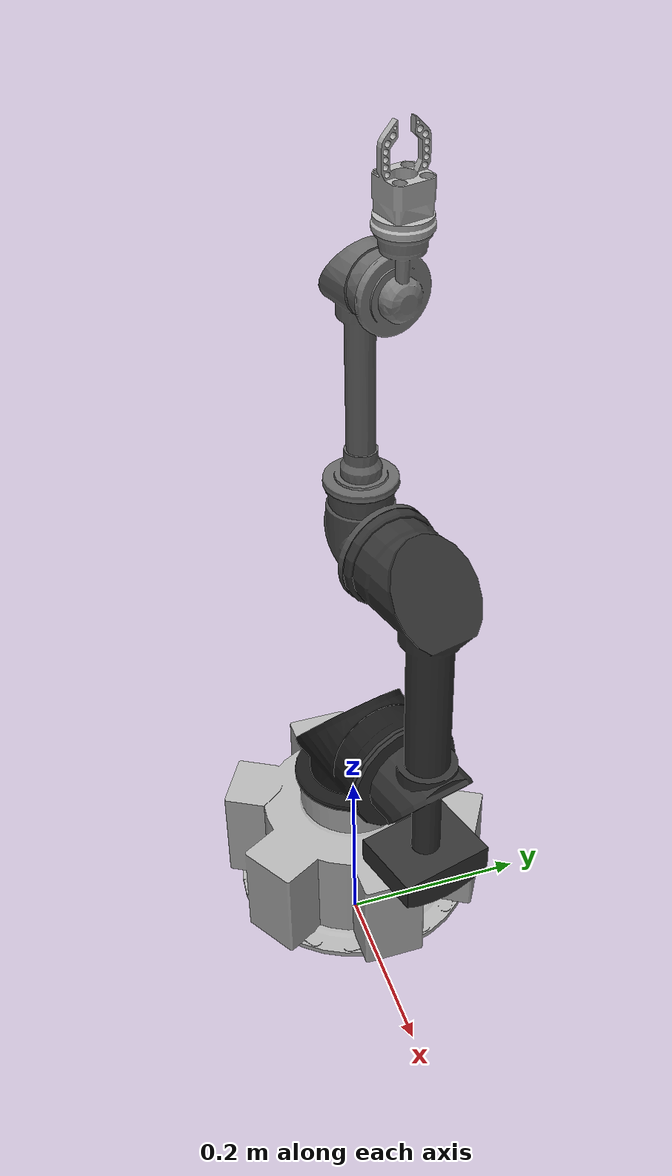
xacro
<?xml version="1.0"?>
<robot xmlns:xacro="http://ros.org/wiki/xacro"
	name="servo" >

	<!-- common stuff -->
	<xacro:include filename="$(find servo_description)/urdf/common.gazebo.xacro" />

	<!-- servo -->
	<xacro:include filename="$(find servo_description)/urdf/servo.urdf.xacro" />
	<!--xacro:include filename="$(find servo_description)/urdf/wall_world.urdf.xacro" /-->

	<!-- arm -->
	<xacro:servo_robot prefix="" joint_limited="false"/>

	<link name="world" />

	<joint name="world_joint" type="fixed">
		<parent link="world" />
		<child link = "base_link" />
		<origin xyz="0 -0 0.065" rpy="0.0 0.0 0.0" />
	</joint>
</robot>

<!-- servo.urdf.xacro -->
<robot xmlns:xacro="http://ros.org/wiki/xacro">
    <xacro:include filename="$(find servo_description)/urdf/servo.transmission.xacro" />
    <xacro:include filename="$(find servo_description)/urdf/servo.gazebo.xacro" />

    <!-- Inertia parameters -->
    <xacro:property name="base_mass" value="4.0" />  <!-- This mass might be incorrect -->
    <xacro:property name="a1_mass" value="3.7000" />
    <xacro:property name="a2_mass" value="8.3930" />
    <xacro:property name="a3_mass" value="2.2750" />
    <xacro:property name="a4_mass" value="1.2190" />
    <xacro:property name="a5_mass" value="1.2190" />
    <xacro:property name="a6_mass" value="0.1879" />

    <!-- Kinematic model -->
    <!-- Properties from urcontrol.conf -->

    <xacro:property name="servo_d1" value="0.089159" />
    <xacro:property name="servo_a2" value="-0.42500" />
    <xacro:property name="servo_a3" value="-0.39225" />
    <xacro:property name="servo_d4" value="0.10915" />
    <xacro:property name="servo_d5" value="0.09465" />
    <xacro:property name="servo_d6" value="0.0823" />

    <!-- Arbitrary offsets for shoulder/elbow joints -->
    <xacro:property name="shoulder_offset" value="0.13585" />  <!-- measured from model -->
    <xacro:property name="elbow_offset" value="-0.1197" /> <!-- measured from model -->

    <!-- link lengths used in model -->
    <xacro:property name="a1_height" value="${servo_d1}" />
    <xacro:property name="a2_length" value="${-servo_a2}" />
    <xacro:property name="a3_length" value="${-servo_a3}" />
    <xacro:property name="a4_length" value="${servo_d4}" />
    <xacro:property name="a5_length" value="${servo_d5}" />
    <xacro:property name="a6_length" value="${servo_d6}" />

    <!--property name="shoulder_height" value="0.089159" /-->
    <!--property name="shoulder_offset" value="0.13585" /-->  <!-- shoulder_offset - elbow_offset + wrist_1_length = 0.10915 -->
    <!--property name="upper_arm_length" value="0.42500" /-->
    <!--property name="elbow_offset" value="0.1197" /-->       <!-- CAD measured -->
    <!--property name="forearm_length" value="0.39225" /-->
    <!--property name="wrist_1_length" value="0.093" /-->     <!-- CAD measured -->
    <!--property name="wrist_2_length" value="0.09465" /-->   <!-- In CAD this distance is 0.930, but in the spec it is 0.09465 -->
    <!--property name="wrist_3_length" value="0.0823" /-->

    <xacro:property name="shoulder_radius" value="0.060" />   <!-- manually measured -->
    <xacro:property name="upper_arm_radius" value="0.054" />  <!-- manually measured -->
    <xacro:property name="elbow_radius" value="0.060" />      <!-- manually measured -->
    <xacro:property name="forearm_radius" value="0.040" />    <!-- manually measured -->
    <xacro:property name="wrist_radius" value="0.045" />      <!-- manually measured -->

    <xacro:macro name="cylinder_inertial" params="radius length mass *origin">
        <inertial>
            <mass value="${mass}" />
            <xacro:insert_block name="origin" />
            <inertia
                ixx="${0.0833333 * mass * (3 * radius * radius + length * length)}" ixy="0.0" ixz="0.0"
                iyy="${0.0833333 * mass * (3 * radius * radius + length * length)}" iyz="0.0"
                izz="${0.5 * mass * radius * radius}"
            />
        </inertial>
    </xacro:macro>

    <xacro:macro name="null_inertial" params="radius length mass *origin">
        <inertial>
            <mass value="${mass}" />
            <xacro:insert_block name="origin" />
            <inertia
                ixx="0" ixy="0" ixz="0"
                iyy="0" iyz="0"
                izz="0"
            />
        </inertial>
    </xacro:macro>

    <xacro:macro name="servo_robot" params="prefix joint_limited
        a1_lower_limit:=${-pi}    a1_upper_limit:=${pi}
        a2_lower_limit:=${-pi}    a2_upper_limit:=${pi}
        a3_lower_limit:=${-pi}    a3_upper_limit:=${pi}
        a4_lower_limit:=${-pi}    a4_upper_limit:=${pi}
        a5_lower_limit:=${-pi}    a5_upper_limit:=${pi}
        a6_lower_limit:=${-pi}    a6_upper_limit:=${pi}">

        <link name="${prefix}base_link" >
            <visual>
                <geometry>
                    <mesh filename="package://servo_description/meshes/base_link.stl" />
                </geometry>
                <material name="Black">
                    <color rgba="0.7 0.7 0.7 1.0"/>
                </material>
            </visual>
            <collision>
                <geometry>
                    <mesh filename="package://servo_description/meshes/base_link.stl" />
                </geometry>
            </collision>
            <xacro:null_inertial radius="0.06" length="0.05" mass="${base_mass}">
                <origin xyz="0.0 0.0 0.0" rpy="0 0 0" />
            </xacro:null_inertial>
        </link>

        <joint name="${prefix}a1_joint" type="revolute">
            <parent link="${prefix}base_link" />
            <child link = "${prefix}a1_link" />
            <origin xyz="0 0 0" rpy="-0.18123 -1.5708 0.18123" />
            <axis xyz="1 0 0" />
            <xacro:unless value="${joint_limited}">
                <limit lower="${-2.0 * pi}" upper="${2.0 * pi}" effort="150.0" velocity="3.15"/>
            </xacro:unless>
            <xacro:if value="${joint_limited}">
                <limit lower="${a1_lower_limit}" upper="${a1_upper_limit}" effort="150.0" velocity="3.15"/>
            </xacro:if>
            <dynamics damping="0.0" friction="0.0"/>
        </joint>

        <link name="${prefix}a1_link">
            <visual>
                <geometry>
                    <mesh filename="package://servo_description/meshes/a1.stl" />
                </geometry>
                <material name="LightGrey">
                    <color rgba="0.1 0.1 0.1 1.0"/>
                </material>
            </visual>
            <collision>
                <geometry>
                    <mesh filename="package://servo_description/meshes/a1.stl" />
                </geometry>
            </collision>
            <xacro:null_inertial radius="0.06" length="0.15" mass="${a1_mass}">
                <origin xyz="0.0 0.0 0.0" rpy="0 0 0" />
            </xacro:null_inertial>
        </link>

        <joint name="${prefix}a2_joint" type="revolute">
            <parent link="${prefix}a1_link" />
            <child link = "${prefix}a2_link" />
            <origin xyz="0.23 0.023553 -0.087899" rpy="0 1.5708 0" />
            <axis xyz="0.96593 0.25882 0" />
            <xacro:unless value="${joint_limited}">
                <limit lower="${-2.0 * pi}" upper="${2.0 * pi}" effort="150.0" velocity="3.15"/>
            </xacro:unless>
            <xacro:if value="${joint_limited}">
                <limit lower="${a2_lower_limit}" upper="${a2_upper_limit}" effort="150.0" velocity="3.15"/>
            </xacro:if>
            <dynamics damping="0.0" friction="0.0"/>
        </joint>

        <link name="${prefix}a2_link">
            <visual>
                <geometry>
                    <mesh filename="package://servo_description/meshes/a2.stl" />
                </geometry>
                <material name="Black">
                    <color rgba="0.2 0.2 0.2 1.0"/>
                </material>
            </visual>
            <collision>
                <geometry>
                    <mesh filename="package://servo_description/meshes/a2.stl" />
                </geometry>
            </collision>
            <xacro:null_inertial radius="0.06" length="0.56" mass="${a2_mass}">
                <origin xyz="0.0 0.0 0.28" rpy="0 0 0" />
            </xacro:null_inertial>
        </link>

        <joint name="${prefix}a3_joint" type="revolute">
            <parent link="${prefix}a2_link" />
            <child link = "${prefix}a3_link" />
            <origin xyz="-0.027529 -0.0073763 0.25899" rpy="0 0 0" />
            <axis xyz="0.96593 0.25882 0" />
            <xacro:unless value="${joint_limited}">
                <limit lower="${-pi}" upper="${pi}" effort="150.0" velocity="3.15"/>
            </xacro:unless>
            <xacro:if value="${joint_limited}">
                <limit lower="${a3_lower_limit}" upper="${a3_upper_limit}" effort="150.0" velocity="3.15"/>
            </xacro:if>
            <dynamics damping="0.0" friction="0.0"/>
        </joint>

        <link name="${prefix}a3_link">
            <visual>
                <geometry>
                    <mesh filename="package://servo_description/meshes/a3.stl" />
                </geometry>
                <material name="LightGrey">
                    <color rgba="0.3 0.3 0.3 1.0"/>
                </material>
            </visual>
            <collision>
                <geometry>
                    <mesh filename="package://servo_description/meshes/a3.stl" />
                </geometry>
            </collision>
            <xacro:null_inertial radius="0.06" length="0.5" mass="${a3_mass}">
                <origin xyz="0.0 0.0 0.25" rpy="0 0 0" />
            </xacro:null_inertial>
        </link>

        <joint name="${prefix}a4_joint" type="revolute">
            <parent link="${prefix}a3_link" />
            <child link = "${prefix}a4_link" />
            <origin xyz="-0.040569 -0.01087 0.058" rpy="0 0 0" />
            <axis xyz="0 0 1" />
            <xacro:unless value="${joint_limited}">
                <limit lower="${-2.0 * pi}" upper="${2.0 * pi}" effort="28.0" velocity="3.2"/>
            </xacro:unless>
            <xacro:if value="${joint_limited}">
                <limit lower="${a4_lower_limit}" upper="${a4_upper_limit}" effort="28.0" velocity="3.2"/>
            </xacro:if>
            <dynamics damping="0.0" friction="0.0"/>
        </joint>

        <link name="${prefix}a4_link">
            <visual>
                <geometry>
                    <mesh filename="package://servo_description/meshes/a4.stl" />
                </geometry>
                <material name="Green">
                    <color rgba="0.4 0.4 0.4 1.0"/>
                </material>
            </visual>
            <collision>
                <geometry>
                    <mesh filename="package://servo_description/meshes/a4.stl" />
                </geometry>
            </collision>
            <xacro:null_inertial radius="0.6" length="0.12" mass="${a4_mass}">
                <origin xyz="0.0 0.0 0.0" rpy="0 0 0" />
            </xacro:null_inertial>
        </link>

        <joint name="${prefix}a5_joint" type="revolute">
            <parent link="${prefix}a4_link" />
            <child link = "${prefix}a5_link" />
            <origin xyz="0.044433 0.011906 0.21" rpy="0 0 0" />
            <axis xyz="0.96593 0.25882 0" />
            <xacro:unless value="${joint_limited}">
                <limit lower="${-2.0 * pi}" upper="${2.0 * pi}" effort="28.0" velocity="3.2"/>
            </xacro:unless>
            <xacro:if value="${joint_limited}">
                <limit lower="${a5_lower_limit}" upper="${a5_upper_limit}" effort="28.0" velocity="3.2"/>
            </xacro:if>
            <dynamics damping="0.0" friction="0.0"/>
        </joint>

        <link name="${prefix}a5_link">
            <visual>
                <geometry>
                    <mesh filename="package://servo_description/meshes/a5.stl" />
                </geometry>
                <material name="Black">
                    <color rgba="0.5 0.5 0.5 1.0"/>
                </material>
            </visual>
            <collision>
                <geometry>
                    <mesh filename="package://servo_description/meshes/a5.stl" />
                </geometry>
            </collision>
            <xacro:null_inertial radius="0.6" length="0.12" mass="${a5_mass}">
                <origin xyz="0.0 0.0 0.0" rpy="0 0 0" />
            </xacro:null_inertial>
        </link>

        <joint name="${prefix}a6_joint" type="revolute">
            <parent link="${prefix}a5_link" />
            <child link = "${prefix}a6_link" />
            <origin xyz="0.016179 0.0043352 0.0615" rpy="0 0 0" />
            <axis xyz="0 0 1" />
            <xacro:unless value="${joint_limited}">
                <limit lower="${-2.0 * pi}" upper="${2.0 * pi}" effort="28.0" velocity="3.2"/>
            </xacro:unless>
            <xacro:if value="${joint_limited}">
                <limit lower="${a6_lower_limit}" upper="${a6_upper_limit}" effort="28.0" velocity="3.2"/>
            </xacro:if>
            <dynamics damping="0.0" friction="0.0"/>
        </joint>

        <link name="${prefix}a6_link">
            <visual>
                <geometry>
                    <mesh filename="package://servo_description/meshes/a6.stl" />
                </geometry>
                <material name="LightGrey">
                    <color rgba="0.7 0.7 0.7 1.0"/>
                </material>
            </visual>
            <collision>
                <geometry>
                    <mesh filename="package://servo_description/meshes/a6.stl" />
                </geometry>
            </collision>
            <xacro:null_inertial radius="0.6" length="0.12" mass="${a6_mass}">
                <origin xyz="0.0 0.0 0.0" rpy="0 0 0" />
            </xacro:null_inertial>
        </link>

        <joint name="${prefix}ee_fixed_joint" type="fixed">
            <parent link="${prefix}a6_link" />
            <child link = "${prefix}ee_link" />
            <origin xyz="0.0 0.0 0.10" rpy="0.0 0.0 ${pi/2.0}" />
        </joint>

        <link name="${prefix}ee_link">
            <collision>
                <geometry>
                    <box size="0.01 0.01 0.01"/>
                </geometry>
                <origin rpy="0 0 0" xyz="-0.01 0 0"/>
            </collision>
        </link>

        <xacro:servo_arm_transmission prefix="${prefix}" />
        <xacro:servo_arm_gazebo prefix="${prefix}" />

        <!-- ROS base_link to UR 'Base' Coordinates transform -->
        <link name="${prefix}base"/>
        <joint name="${prefix}base_link-base_fixed_joint" type="fixed">
            <!-- NOTE: this rotation is only needed as long as base_link itself is
                 not corrected wrt the real robot (ie: rotated over 180 degrees)
            -->
            <origin xyz="0 0 0" rpy="0 0 ${-pi}"/>
            <parent link="${prefix}base_link"/>
            <child link="${prefix}base"/>
        </joint>

        <!-- Frame coincident with all-zeros TCP on UR controller -->
        <link name="${prefix}tool0"/>
        <joint name="${prefix}a6_link-tool0_fixed_joint" type="fixed">
            <origin xyz="0 ${a6_length} 0" rpy="${pi/-2.0} 0 0"/>
            <parent link="${prefix}a6_link"/>
            <child link="${prefix}tool0"/>
        </joint>

    </xacro:macro>
</robot>
